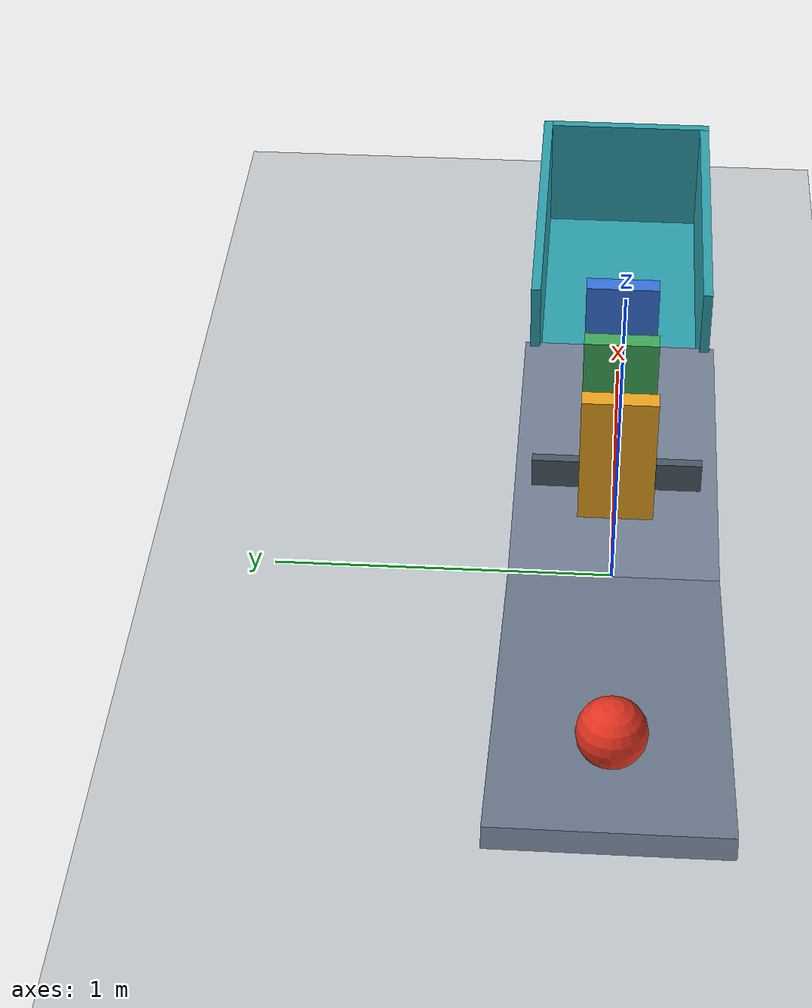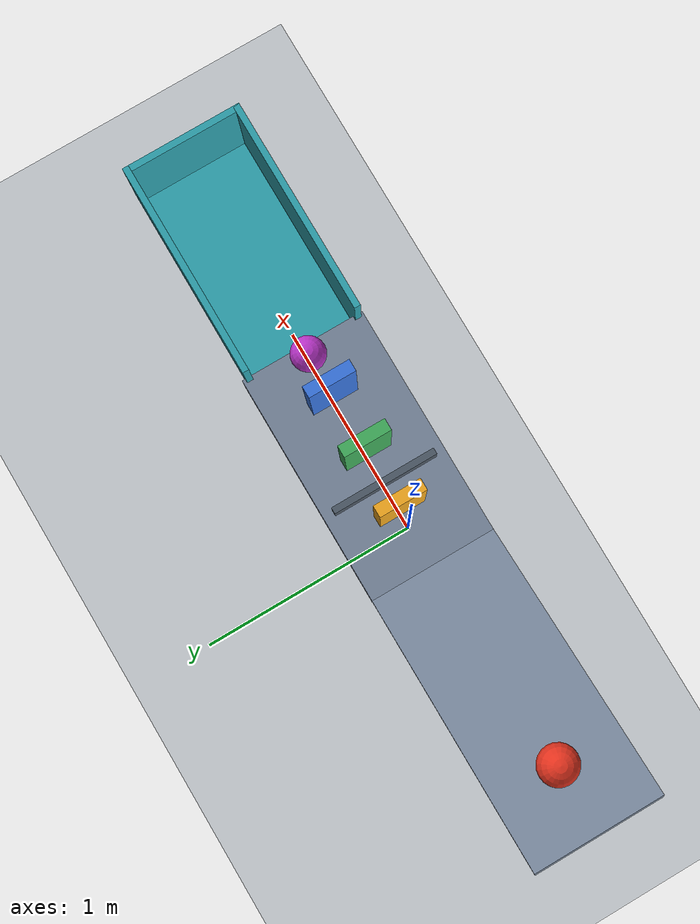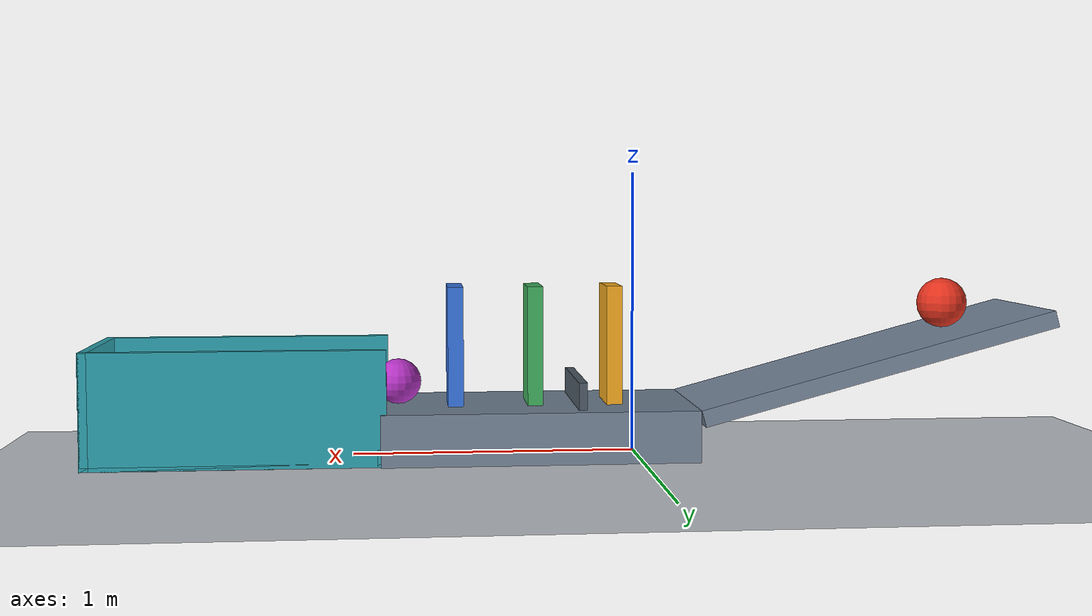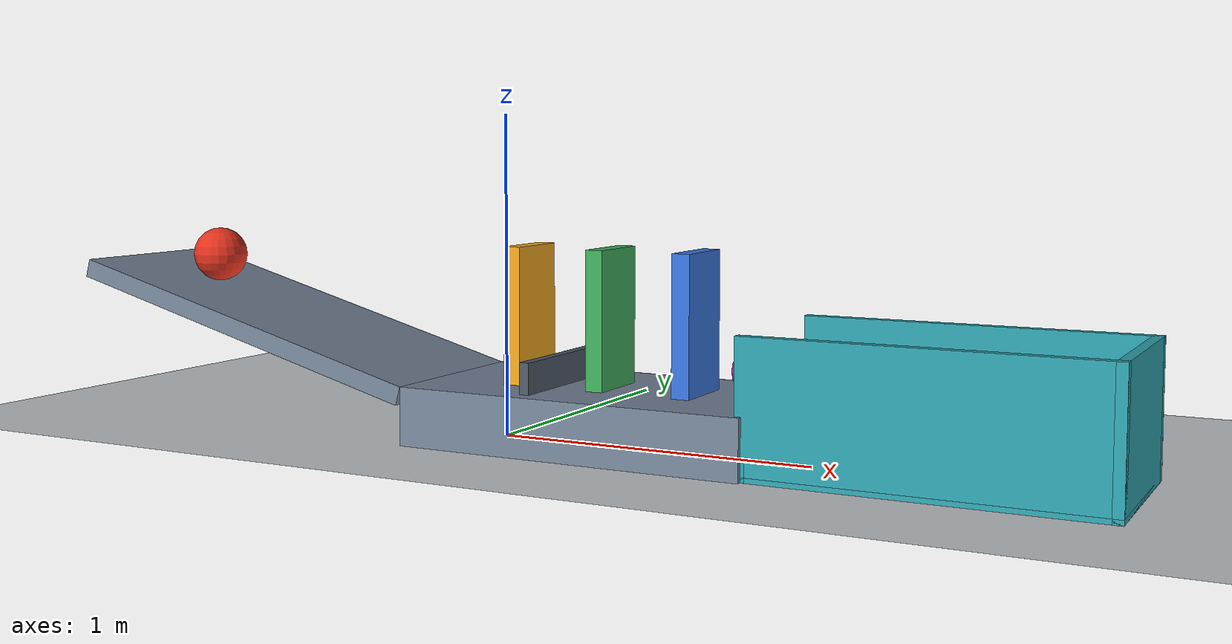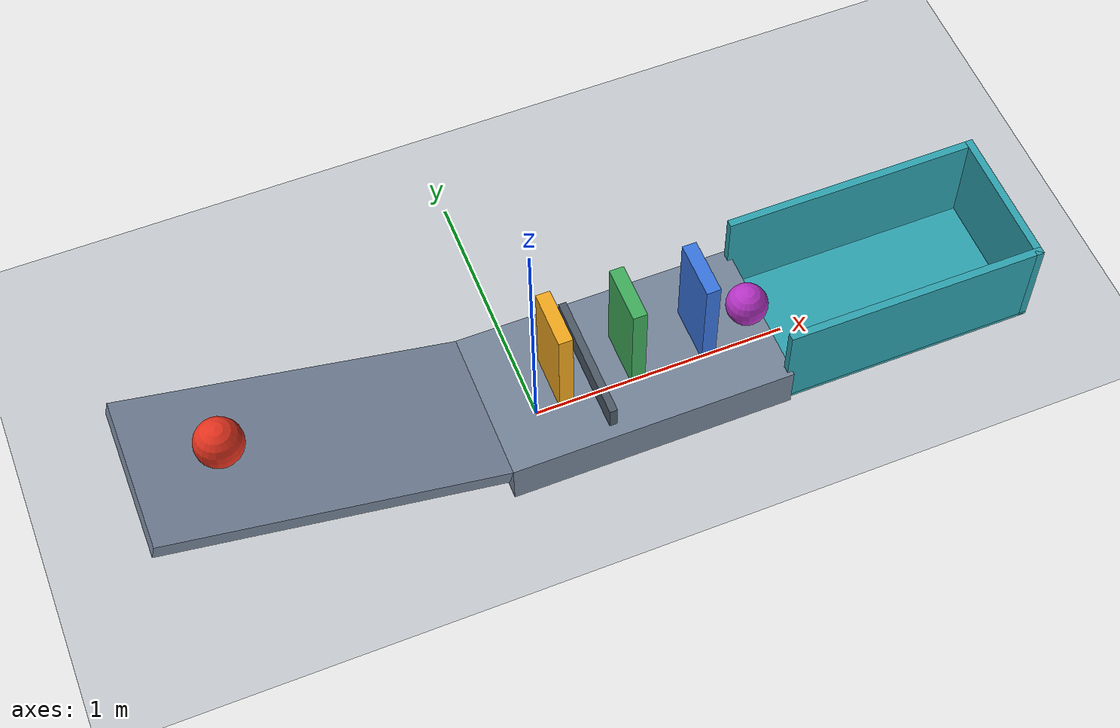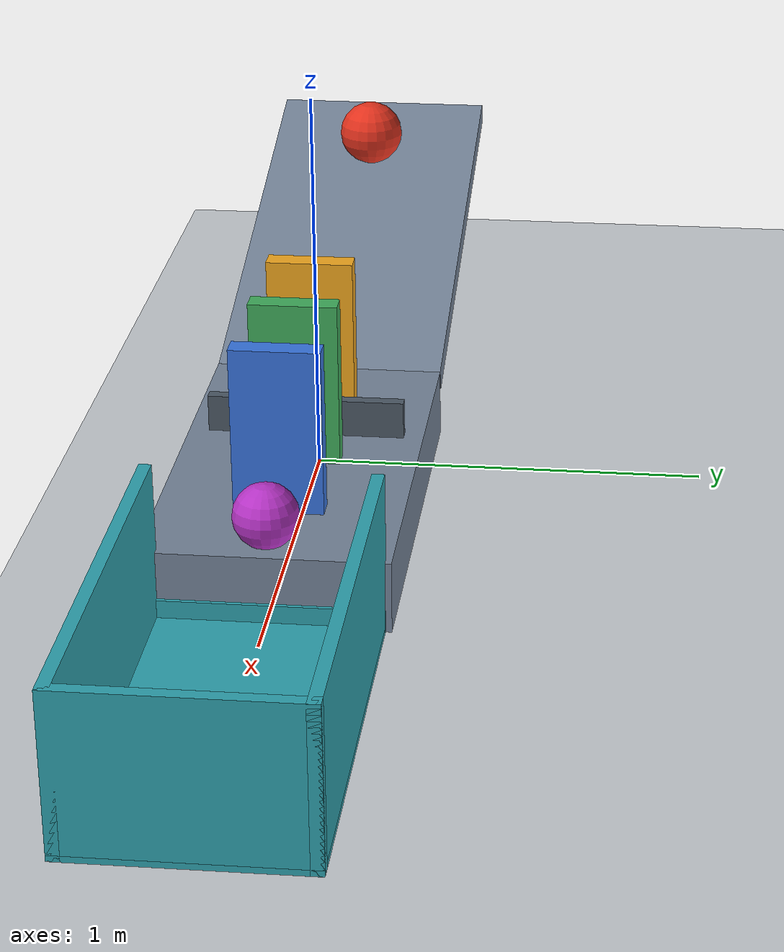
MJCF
<mujoco model="ramp_domino_chain_into_cup">
  <compiler angle="degree"/>
  <option timestep="0.002" gravity="0 0 -9.81" integrator="implicitfast" cone="elliptic" iterations="100"/>
  <size njmax="2000" nconmax="400"/>

  <visual>
    <global azimuth="125" elevation="-24"/>
    <headlight ambient="0.35 0.35 0.35" diffuse="0.7 0.7 0.7" specular="0.2 0.2 0.2"/>
  </visual>

  <worldbody>
    <light name="main_light" pos="-1 -2 4" dir="0.3 0.4 -1"/>
    <camera name="overview" pos="2.5 -4 2.6" xyaxes="0.87 0.49 0 -0.23 0.41 0.88"/>

    <geom name="floor" type="plane" size="5 5 0.1" friction="1 0.005 0.001" rgba="0.78 0.80 0.82 1"/>

    <!-- The inclined surface descends toward +x and joins the raised runway. -->
    <body name="ramp" pos="0 0 0">
      <geom name="ramp_slope" type="box" pos="-0.835616 0 0.319255" euler="0 15 0" size="0.65 0.30 0.03" friction="1.1 0.002 0.0001" rgba="0.46 0.52 0.60 1"/>
      <geom name="ramp_runway" type="box" pos="0.35 0 0.09" size="0.55 0.30 0.09" friction="1.4 0.002 0.0001" rgba="0.46 0.52 0.60 1"/>
    </body>

    <!-- Its initial contact point is 1 m uphill along the ramp surface. -->
    <body name="ball1" pos="-1.142632 0 0.526252">
      <freejoint name="ball1_free"/>
      <geom name="ball1_sphere" type="sphere" size="0.09" mass="0.60" condim="6" friction="1.1 0.002 0.0001" solref="0.006 1" rgba="0.90 0.20 0.12 1"/>
    </body>

    <body name="d1" pos="0.08 0 0.3905">
      <freejoint name="d1_free"/>
      <geom name="d1_block" type="box" size="0.0275 0.11 0.21" mass="0.24" friction="1.4 0.003 0.0001" solref="0.006 1" rgba="0.95 0.66 0.12 1"/>
    </body>

    <!-- This low stop arrests ball1 after its first impact, below the domino-to-domino contacts. -->
    <body name="trigger_stop" pos="0.205 0 0.2275">
      <geom name="trigger_stop_block" type="box" size="0.015 0.25 0.0475" friction="1.2 0.003 0.0001" solref="0.006 1" rgba="0.30 0.35 0.40 1"/>
    </body>

    <body name="d2" pos="0.36 0 0.3905">
      <freejoint name="d2_free"/>
      <geom name="d2_block" type="box" size="0.0275 0.11 0.21" mass="0.22" friction="1.4 0.003 0.0001" solref="0.006 1" rgba="0.25 0.68 0.36 1"/>
    </body>

    <body name="d3" pos="0.64 0 0.3905">
      <freejoint name="d3_free"/>
      <geom name="d3_block" type="box" size="0.0275 0.11 0.21" mass="0.20" friction="1.4 0.003 0.0001" solref="0.006 1" rgba="0.22 0.46 0.88 1"/>
    </body>

    <!-- d3 pushes this ball off the runway's x=0.9 edge into the cup below. -->
    <body name="ball2" pos="0.84 0 0.2605">
      <freejoint name="ball2_free"/>
      <geom name="ball2_sphere" type="sphere" size="0.08" mass="0.10" condim="6" friction="0.9 0.008 0.008" solref="0.008 1" rgba="0.72 0.20 0.78 1"/>
    </body>

    <!-- An open-topped rectangular cup with a low entry lip and three tall walls. -->
    <body name="cup" pos="0 0 0">
      <geom name="cup_bottom" type="box" pos="1.39 0 0.0075" size="0.51 0.285 0.0075" condim="6" friction="0.9 0.008 0.008" solref="0.008 1" rgba="0.18 0.64 0.69 1"/>
      <geom name="cup_entry_lip" type="box" pos="0.895 0 0.03" size="0.015 0.285 0.03" condim="6" friction="0.9 0.008 0.008" solref="0.008 1" rgba="0.18 0.64 0.69 1"/>
      <geom name="cup_back_wall" type="box" pos="1.885 0 0.20" size="0.015 0.285 0.20" condim="6" friction="0.9 0.008 0.008" solref="0.008 1" rgba="0.18 0.64 0.69 1"/>
      <geom name="cup_left_wall" type="box" pos="1.39 0.27 0.20" size="0.51 0.015 0.20" condim="6" friction="0.9 0.008 0.008" solref="0.008 1" rgba="0.18 0.64 0.69 1"/>
      <geom name="cup_right_wall" type="box" pos="1.39 -0.27 0.20" size="0.51 0.015 0.20" condim="6" friction="0.9 0.008 0.008" solref="0.008 1" rgba="0.18 0.64 0.69 1"/>
    </body>
  </worldbody>

  <keyframe>
    <key name="start"/>
  </keyframe>
</mujoco>
